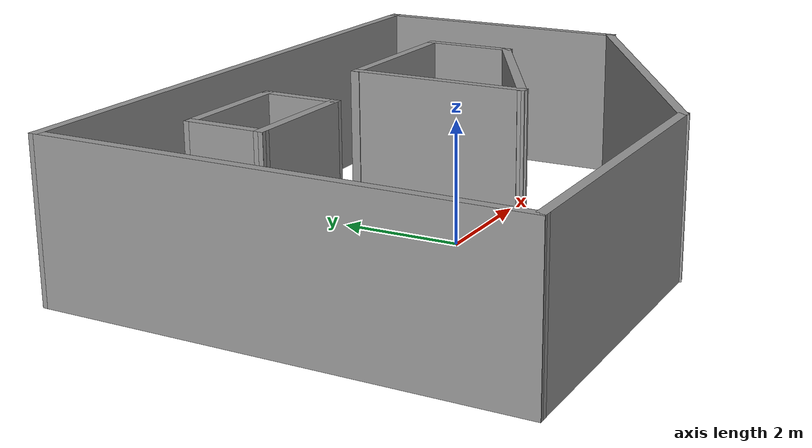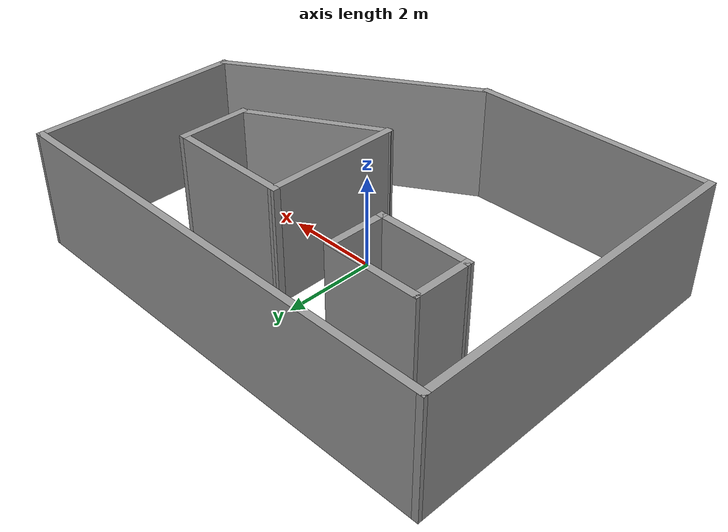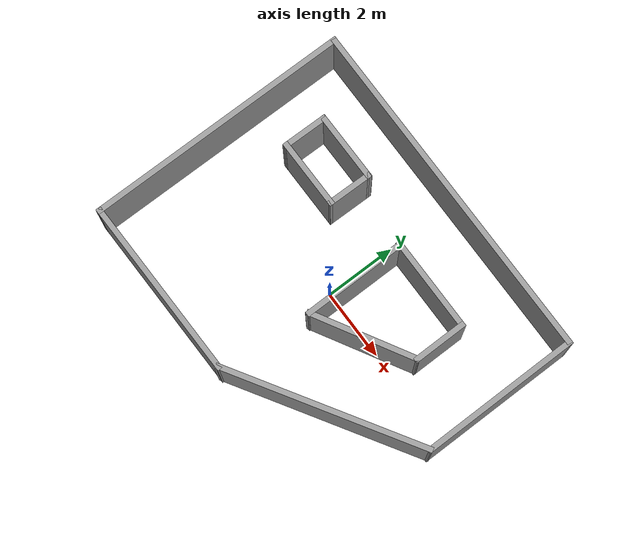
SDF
<?xml version='1.0'?>
<sdf version='1.7'>
  <model name='Muri10'>
    <pose>0.011134 0.135107 0 0 -0 0</pose>
    <link name='Wall_0'>
      <collision name='Wall_0_Collision'>
        <geometry>
          <box>
            <size>9.857 0.15 2.5</size>
          </box>
        </geometry>
        <pose>0 0 1.25 0 -0 0</pose>
      </collision>
      <visual name='Wall_0_Visual'>
        <pose>0 0 1.25 0 -0 0</pose>
        <geometry>
          <box>
            <size>9.857 0.15 2.5</size>
          </box>
        </geometry>
        <material>
          <script>
            <uri>file://media/materials/scripts/gazebo.material</uri>
            <name>Gazebo/Grey</name>
          </script>
          <ambient>1 1 1 1</ambient>
        </material>
        <meta>
          <layer>0</layer>
        </meta>
      </visual>
      <pose>-0.005688 3.67117 0 0 -0 -0.002749</pose>
    </link>
    <link name='Wall_1'>
      <collision name='Wall_1_Collision'>
        <geometry>
          <box>
            <size>4.52662 0.15 2.5</size>
          </box>
        </geometry>
        <pose>0 0 1.25 0 -0 0</pose>
      </collision>
      <visual name='Wall_1_Visual'>
        <pose>0 0 1.25 0 -0 0</pose>
        <geometry>
          <box>
            <size>4.52662 0.15 2.5</size>
          </box>
        </geometry>
        <material>
          <script>
            <uri>file://media/materials/scripts/gazebo.material</uri>
            <name>Gazebo/Grey</name>
          </script>
          <ambient>1 1 1 1</ambient>
        </material>
        <meta>
          <layer>0</layer>
        </meta>
      </visual>
      <pose>4.86611 1.46957 0 0 -0 -1.56243</pose>
    </link>
    <link name='Wall_10'>
      <collision name='Wall_10_Collision'>
        <geometry>
          <box>
            <size>1.30328 0.15 2.5</size>
          </box>
        </geometry>
        <pose>0 0 1.25 0 -0 0</pose>
      </collision>
      <visual name='Wall_10_Visual'>
        <pose>0 0 1.25 0 -0 0</pose>
        <geometry>
          <box>
            <size>1.30328 0.15 2.5</size>
          </box>
        </geometry>
        <material>
          <script>
            <uri>file://media/materials/scripts/gazebo.material</uri>
            <name>Gazebo/Grey</name>
          </script>
          <ambient>1 1 1 1</ambient>
        </material>
        <meta>
          <layer>0</layer>
        </meta>
      </visual>
      <pose>-1.55281 1.6543 0 0 -0 -1.58233</pose>
    </link>
    <link name='Wall_11'>
      <collision name='Wall_11_Collision'>
        <geometry>
          <box>
            <size>2 0.15 2.5</size>
          </box>
        </geometry>
        <pose>0 0 1.25 0 -0 0</pose>
      </collision>
      <visual name='Wall_11_Visual'>
        <pose>0 0 1.25 0 -0 0</pose>
        <geometry>
          <box>
            <size>2 0.15 2.5</size>
          </box>
        </geometry>
        <material>
          <script>
            <uri>file://media/materials/scripts/gazebo.material</uri>
            <name>Gazebo/Grey</name>
          </script>
          <ambient>1 1 1 1</ambient>
        </material>
        <meta>
          <layer>0</layer>
        </meta>
      </visual>
      <pose>-2.48446 1.0777 0 0 -0 3.14159</pose>
    </link>
    <link name='Wall_15'>
      <collision name='Wall_15_Collision'>
        <geometry>
          <box>
            <size>3.06432 0.15 2.5</size>
          </box>
        </geometry>
        <pose>0 0 1.25 0 -0 0</pose>
      </collision>
      <visual name='Wall_15_Visual'>
        <pose>0 0 1.25 0 -0 0</pose>
        <geometry>
          <box>
            <size>3.06432 0.15 2.5</size>
          </box>
        </geometry>
        <material>
          <script>
            <uri>file://media/materials/scripts/gazebo.material</uri>
            <name>Gazebo/Grey</name>
          </script>
          <ambient>1 1 1 1</ambient>
        </material>
        <meta>
          <layer>0</layer>
        </meta>
      </visual>
      <pose>1.62063 -0.326451 0 0 -0 -2.62545</pose>
    </link>
    <link name='Wall_19'>
      <collision name='Wall_19_Collision'>
        <geometry>
          <box>
            <size>2.7 0.15 2.5</size>
          </box>
        </geometry>
        <pose>0 0 1.25 0 -0 0</pose>
      </collision>
      <visual name='Wall_19_Visual'>
        <pose>0 0 1.25 0 -0 0</pose>
        <geometry>
          <box>
            <size>2.7 0.15 2.5</size>
          </box>
        </geometry>
        <material>
          <script>
            <uri>file://media/materials/scripts/gazebo.material</uri>
            <name>Gazebo/Grey</name>
          </script>
          <ambient>1 1 1 1</ambient>
        </material>
        <meta>
          <layer>0</layer>
        </meta>
      </visual>
      <pose>1.60286 1.80344 0 0 -0 -0.004515</pose>
    </link>
    <link name='Wall_2'>
      <collision name='Wall_2_Collision'>
        <geometry>
          <box>
            <size>5.78949 0.15 2.5</size>
          </box>
        </geometry>
        <pose>0 0 1.25 0 -0 0</pose>
      </collision>
      <visual name='Wall_2_Visual'>
        <pose>0 0 1.25 0 -0 0</pose>
        <geometry>
          <box>
            <size>5.78949 0.15 2.5</size>
          </box>
        </geometry>
        <material>
          <script>
            <uri>file://media/materials/scripts/gazebo.material</uri>
            <name>Gazebo/Grey</name>
          </script>
          <ambient>1 1 1 1</ambient>
        </material>
        <meta>
          <layer>0</layer>
        </meta>
      </visual>
      <pose>2.46436 -2.18784 0 0 -0 -2.59354</pose>
    </link>
    <link name='Wall_22'>
      <collision name='Wall_22_Collision'>
        <geometry>
          <box>
            <size>1.55588 0.15 2.5</size>
          </box>
        </geometry>
        <pose>0 0 1.25 0 -0 0</pose>
      </collision>
      <visual name='Wall_22_Visual'>
        <pose>0 0 1.25 0 -0 0</pose>
        <geometry>
          <box>
            <size>1.55588 0.15 2.5</size>
          </box>
        </geometry>
        <material>
          <script>
            <uri>file://media/materials/scripts/gazebo.material</uri>
            <name>Gazebo/Grey</name>
          </script>
          <ambient>1 1 1 1</ambient>
        </material>
        <meta>
          <layer>0</layer>
        </meta>
      </visual>
      <pose>2.89621 1.09519 0 0 -0 1.578</pose>
    </link>
    <link name='Wall_24'>
      <collision name='Wall_24_Collision'>
        <geometry>
          <box>
            <size>3.00483 0.15 2.5</size>
          </box>
        </geometry>
        <pose>0 0 1.25 0 -0 0</pose>
      </collision>
      <visual name='Wall_24_Visual'>
        <pose>0 0 1.25 0 -0 0</pose>
        <geometry>
          <box>
            <size>3.00483 0.15 2.5</size>
          </box>
        </geometry>
        <material>
          <script>
            <uri>file://media/materials/scripts/gazebo.material</uri>
            <name>Gazebo/Grey</name>
          </script>
          <ambient>1 1 1 1</ambient>
        </material>
        <meta>
          <layer>0</layer>
        </meta>
      </visual>
      <pose>0.347232 0.3818 0 0 -0 -1.56655</pose>
    </link>
    <link name='Wall_3'>
      <collision name='Wall_3_Collision'>
        <geometry>
          <box>
            <size>5.10642 0.15 2.5</size>
          </box>
        </geometry>
        <pose>0 0 1.25 0 -0 0</pose>
      </collision>
      <visual name='Wall_3_Visual'>
        <pose>0 0 1.25 0 -0 0</pose>
        <geometry>
          <box>
            <size>5.10642 0.15 2.5</size>
          </box>
        </geometry>
        <material>
          <script>
            <uri>file://media/materials/scripts/gazebo.material</uri>
            <name>Gazebo/Grey</name>
          </script>
          <ambient>1 1 1 1</ambient>
        </material>
        <meta>
          <layer>0</layer>
        </meta>
      </visual>
      <pose>-2.40732 -3.66364 0 0 -0 -3.13891</pose>
    </link>
    <link name='Wall_6'>
      <collision name='Wall_6_Collision'>
        <geometry>
          <box>
            <size>7.50523 0.15 2.5</size>
          </box>
        </geometry>
        <pose>0 0 1.25 0 -0 0</pose>
      </collision>
      <visual name='Wall_6_Visual'>
        <pose>0 0 1.25 0 -0 0</pose>
        <geometry>
          <box>
            <size>7.50523 0.15 2.5</size>
          </box>
        </geometry>
        <material>
          <script>
            <uri>file://media/materials/scripts/gazebo.material</uri>
            <name>Gazebo/Grey</name>
          </script>
          <ambient>1 1 1 1</ambient>
        </material>
        <meta>
          <layer>0</layer>
        </meta>
      </visual>
      <pose>-4.87899 0.007114 0 0 -0 -1.57619</pose>
    </link>
    <link name='Wall_8'>
      <collision name='Wall_8_Collision'>
        <geometry>
          <box>
            <size>1.30328 0.15 2.5</size>
          </box>
        </geometry>
        <pose>0 0 1.25 0 -0 0</pose>
      </collision>
      <visual name='Wall_8_Visual'>
        <pose>0 0 1.25 0 -0 0</pose>
        <geometry>
          <box>
            <size>1.30328 0.15 2.5</size>
          </box>
        </geometry>
        <material>
          <script>
            <uri>file://media/materials/scripts/gazebo.material</uri>
            <name>Gazebo/Grey</name>
          </script>
          <ambient>1 1 1 1</ambient>
        </material>
        <meta>
          <layer>0</layer>
        </meta>
      </visual>
      <pose>-3.40281 1.6543 0 0 -0 1.55926</pose>
    </link>
    <link name='Wall_9'>
      <collision name='Wall_9_Collision'>
        <geometry>
          <box>
            <size>2 0.15 2.5</size>
          </box>
        </geometry>
        <pose>0 0 1.25 0 -0 0</pose>
      </collision>
      <visual name='Wall_9_Visual'>
        <pose>0 0 1.25 0 -0 0</pose>
        <geometry>
          <box>
            <size>2 0.15 2.5</size>
          </box>
        </geometry>
        <material>
          <script>
            <uri>file://media/materials/scripts/gazebo.material</uri>
            <name>Gazebo/Grey</name>
          </script>
          <ambient>1 1 1 1</ambient>
        </material>
        <meta>
          <layer>0</layer>
        </meta>
      </visual>
      <pose>-2.47116 2.24419 0 0 -0 0</pose>
    </link>
    <static>1</static>
  </model>
</sdf>
